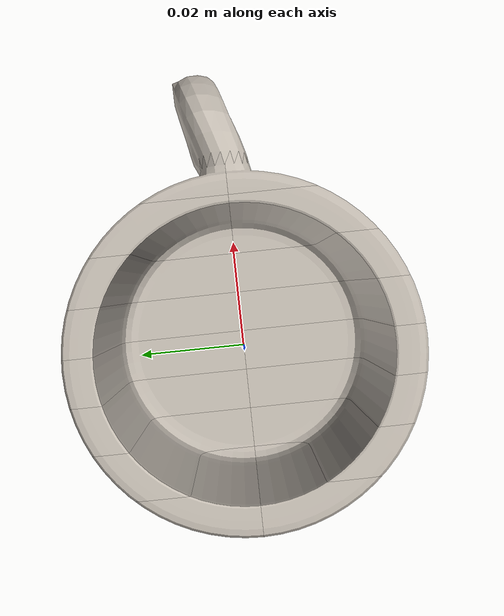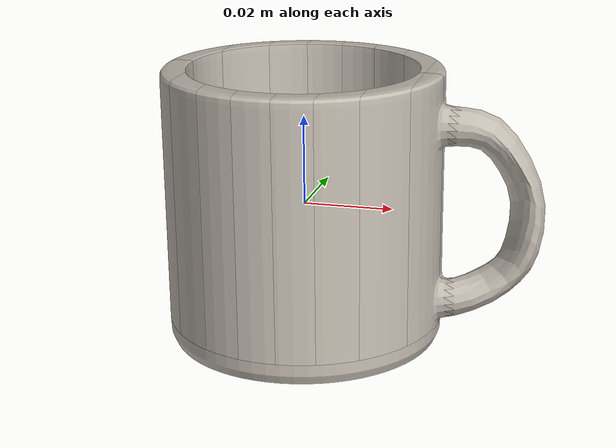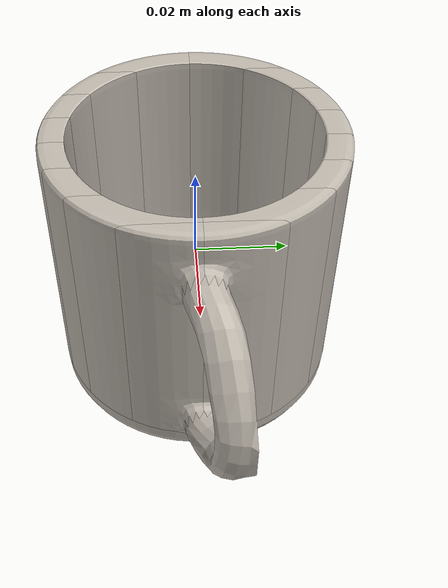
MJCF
<mujoco model="cup1">
  <asset>
    <mesh file="meshes/cup1/Cup1_000.stl" name="cup1_0_mesh" scale="0.9 0.9 0.9"/>
    <mesh file="meshes/cup1/Cup1_001.stl" name="cup1_1_mesh" scale="0.9 0.9 0.9"/>
    <mesh file="meshes/cup1/Cup1_002.stl" name="cup1_2_mesh" scale="0.9 0.9 0.9"/>
    <mesh file="meshes/cup1/Cup1_003.stl" name="cup1_3_mesh" scale="0.9 0.9 0.9"/>
    <mesh file="meshes/cup1/Cup1_004.stl" name="cup1_4_mesh" scale="0.9 0.9 0.9"/>
    <mesh file="meshes/cup1/Cup1_005.stl" name="cup1_5_mesh" scale="0.9 0.9 0.9"/>
    <mesh file="meshes/cup1/Cup1_006.stl" name="cup1_6_mesh" scale="0.9 0.9 0.9"/>
    <mesh file="meshes/cup1/Cup1_007.stl" name="cup1_7_mesh" scale="0.9 0.9 0.9"/>
    <mesh file="meshes/cup1/Cup1_008.stl" name="cup1_8_mesh" scale="0.9 0.9 0.9"/>
    <mesh file="meshes/cup1/Cup1_009.stl" name="cup1_9_mesh" scale="0.9 0.9 0.9"/>
    <mesh file="meshes/cup1/Cup1_010.stl" name="cup1_10_mesh" scale="0.9 0.9 0.9"/>
    <mesh file="meshes/cup1/Cup1_011.stl" name="cup1_11_mesh" scale="0.9 0.9 0.9"/>
    <mesh file="meshes/cup1/Cup1_012.stl" name="cup1_12_mesh" scale="0.9 0.9 0.9"/>
    <mesh file="meshes/cup1/Cup1_013.stl" name="cup1_13_mesh" scale="0.9 0.9 0.9"/>
    <mesh file="meshes/cup1/Cup1_014.stl" name="cup1_14_mesh" scale="0.9 0.9 0.9"/>
    <mesh file="meshes/cup1/Cup1_015.stl" name="cup1_15_mesh" scale="0.9 0.9 0.9"/>
    <mesh file="meshes/cup1/Cup1_016.stl" name="cup1_16_mesh" scale="0.9 0.9 0.9"/>
    <texture file="../textures/ceramic.png" name="tex-ceramic"/>
    <material name="ceramic" reflectance="0.5" texrepeat="1 1" texture="tex-ceramic" texuniform="true"/>
  </asset>
  <worldbody>
    <body>
      <body name="object">
        <geom pos="0 0 0" mesh="cup1_0_mesh" type="mesh" solimp="0.998 0.998 0.001" solref="0.001 1" density="100" friction="0.95 0.3 0.1" material="ceramic" group="0" condim="3"/>
        <geom pos="0 0 0" mesh="cup1_1_mesh" type="mesh" solimp="0.998 0.998 0.001" solref="0.001 1" density="100" friction="0.95 0.3 0.1" material="ceramic" group="0" condim="3"/>
        <geom pos="0 0 0" mesh="cup1_2_mesh" type="mesh" solimp="0.998 0.998 0.001" solref="0.001 1" density="100" friction="0.95 0.3 0.1" material="ceramic" group="0" condim="3"/>
        <geom pos="0 0 0" mesh="cup1_3_mesh" type="mesh" solimp="0.998 0.998 0.001" solref="0.001 1" density="100" friction="0.95 0.3 0.1" material="ceramic" group="0" condim="3"/>
        <geom pos="0 0 0" mesh="cup1_4_mesh" type="mesh" solimp="0.998 0.998 0.001" solref="0.001 1" density="100" friction="0.95 0.3 0.1" material="ceramic" group="0" condim="3"/>
        <geom pos="0 0 0" mesh="cup1_5_mesh" type="mesh" solimp="0.998 0.998 0.001" solref="0.001 1" density="100" friction="0.95 0.3 0.1" material="ceramic" group="0" condim="3"/>
        <geom pos="0 0 0" mesh="cup1_6_mesh" type="mesh" solimp="0.998 0.998 0.001" solref="0.001 1" density="100" friction="0.95 0.3 0.1" material="ceramic" group="0" condim="3"/>
        <geom pos="0 0 0" mesh="cup1_7_mesh" type="mesh" solimp="0.998 0.998 0.001" solref="0.001 1" density="100" friction="0.95 0.3 0.1" material="ceramic" group="0" condim="3"/>
        <geom pos="0 0 0" mesh="cup1_8_mesh" type="mesh" solimp="0.998 0.998 0.001" solref="0.001 1" density="100" friction="0.95 0.3 0.1" material="ceramic" group="0" condim="3"/>
        <geom pos="0 0 0" mesh="cup1_9_mesh" type="mesh" solimp="0.998 0.998 0.001" solref="0.001 1" density="100" friction="0.95 0.3 0.1" material="ceramic" group="0" condim="3"/>
        <geom pos="0 0 0" mesh="cup1_10_mesh" type="mesh" solimp="0.998 0.998 0.001" solref="0.001 1" density="100" friction="0.95 0.3 0.1" material="ceramic" group="0" condim="3"/>
        <geom pos="0 0 0" mesh="cup1_11_mesh" type="mesh" solimp="0.998 0.998 0.001" solref="0.001 1" density="100" friction="0.95 0.3 0.1" material="ceramic" group="0" condim="3"/>
        <geom pos="0 0 0" mesh="cup1_12_mesh" type="mesh" solimp="0.998 0.998 0.001" solref="0.001 1" density="100" friction="0.95 0.3 0.1" material="ceramic" group="0" condim="3"/>
        <geom pos="0 0 0" mesh="cup1_13_mesh" type="mesh" solimp="0.998 0.998 0.001" solref="0.001 1" density="100" friction="0.95 0.3 0.1" material="ceramic" group="0" condim="3"/>
        <geom pos="0 0 0" mesh="cup1_14_mesh" type="mesh" solimp="0.998 0.998 0.001" solref="0.001 1" density="100" friction="0.95 0.3 0.1" material="ceramic" group="0" condim="3"/>
        <geom pos="0 0 0" mesh="cup1_15_mesh" type="mesh" solimp="0.998 0.998 0.001" solref="0.001 1" density="100" friction="0.95 0.3 0.1" material="ceramic" group="0" condim="3"/>
        <geom pos="0 0 0" mesh="cup1_16_mesh" type="mesh" solimp="0.998 0.998 0.001" solref="0.001 1" density="100" friction="0.95 0.3 0.1" material="ceramic" group="0" condim="3"/>
      </body>
      <site rgba="0 0 0 0" size="0.005" pos="0 0 -0.165" name="bottom_site"/>
      <site rgba="0 0 0 0" size="0.005" pos="0 0 0.075" name="top_site"/>
      <site rgba="0 0 0 0" size="0.005" pos="0.025 0.085 0" name="horizontal_radius_site"/>
    </body>
  </worldbody>
</mujoco>
